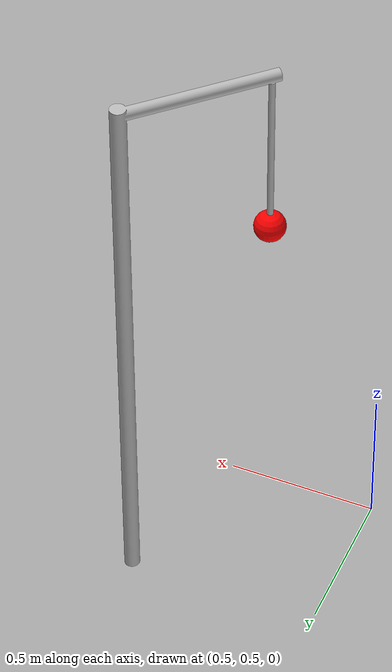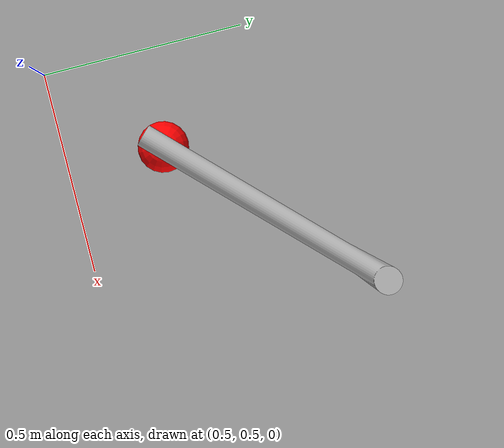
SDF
<sdf version="1.6">
 <world name="default">
  <light name="sun" type="directional">
   <pose>0 0 10 0 -0 0</pose>
   <diffuse>0.8 0.8 0.8 1</diffuse>
   <specular>0.1 0.1 0.1 1</specular>
   <attenuation>
    <range>1000</range>
    <constant>0.9</constant>
    <linear>0.01</linear>
    <quadratic>0.001</quadratic>
   </attenuation>
   <direction>-0.5 0.5 -1</direction>
  </light>
  <model name="field">
   <static>1</static>
   <link name="link">
    <collision name="collision">
     <geometry><plane><normal>0 0 1</normal><size>100 100</size></plane></geometry>
     <surface><friction><ode><mu>100</mu><mu2>50</mu2></ode></friction></surface>
    </collision>
    <visual name="visual">
     <cast_shadows>0</cast_shadows>
     <geometry>
      <mesh><scale>0.2 0.2 0.2</scale><uri>model://larics_gazebo_worlds/models/mbzirc/field.dae</uri></mesh>
     </geometry>
    </visual>
   </link>
  </model>
  <include>
   <uri>model://larics_gazebo_worlds/models/pole</uri>
   <name>pole</name>
   <pose>1 1 0 0 0 0</pose>
  </include>
  <gravity>0 0 -9.8</gravity>
  <magnetic_field>6e-06 2.3e-05 -4.2e-05</magnetic_field>
  <atmosphere type="adiabatic"/>
  <physics name="default_physics" default="0" type="ode">
   <max_step_size>0.001</max_step_size>
   <real_time_factor>1</real_time_factor>
   <real_time_update_rate>1000</real_time_update_rate>
  </physics>
  <scene><ambient>0.4 0.4 0.4 1</ambient><background>0.7 0.7 0.7 1</background><shadows>1</shadows></scene>
  <spherical_coordinates>
   <surface_model>EARTH_WGS84</surface_model>
   <latitude_deg>0</latitude_deg>
   <longitude_deg>0</longitude_deg>
   <elevation>0</elevation>
   <heading_deg>0</heading_deg>
  </spherical_coordinates>
 </world>
</sdf>

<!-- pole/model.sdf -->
<sdf version="1.5">
  <model name="pole">
    <static>true</static>
    <link name="pole">
      <collision name="collision">
        <pose>0 0 0 0 0 0</pose>
        <geometry>
          <mesh>
            <uri>model://larics_gazebo_worlds/models/mbzirc/pole.dae</uri>
          </mesh>
        </geometry>
      </collision>
      <visual name="visual">
        <pose>0 0 0 0 0 0</pose>
        <geometry>
          <mesh>
            <uri>model://larics_gazebo_worlds/models/mbzirc/pole.dae</uri>
          </mesh>
        </geometry>
      </visual>
    </link>
    <link name="rope">
        <pose>-0.23 -0.23 1.705 0 0 0</pose>
        <collision name="collision">
          <geometry>
            <cylinder>
              <radius>.01</radius>
              <length>.5</length>
            </cylinder>
          </geometry>
        </collision>
        <visual name="visual">
          <geometry>
            <cylinder>
              <radius>.01</radius>
              <length>.5</length>
            </cylinder>
          </geometry>
        </visual>
      </link>
      <link name="sphere">
        <pose>-0.23 -0.23 1.405 0 0 0</pose>
        <collision name="collision">
          <geometry>
            <sphere>
              <radius>.05</radius>
            </sphere>
          </geometry>
        </collision>
        <visual name="visual">
          <geometry>
            <sphere>
              <radius>.05</radius>
            </sphere>
          </geometry>
	<material>
	    <ambient>1 0 0 1</ambient>
	    <diffuse>1 0 0 1</diffuse>
	    <specular>0.1 0.1 0.1 1</specular>
	    <emissive>0 0 0 0</emissive>
	  </material>
        </visual>
      </link>

<joint type="ball" name="rope_hinge">
        <pose>-0.23 -0.23 1.955 0 0 0</pose>
        <child>rope</child>
        <parent>pole</parent>
      </joint>

      <joint type="fixed" name="ball_hinge">
        <pose>-0.23 -0.23 1.43 0 0 0</pose>
        <child>sphere</child>
        <parent>rope</parent>
      </joint>
  </model>
</sdf>
